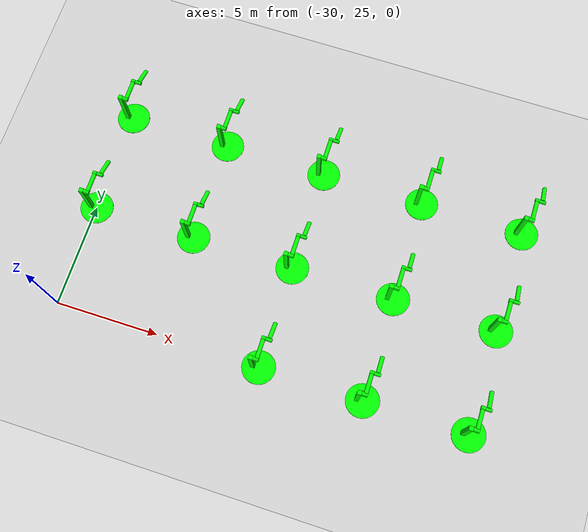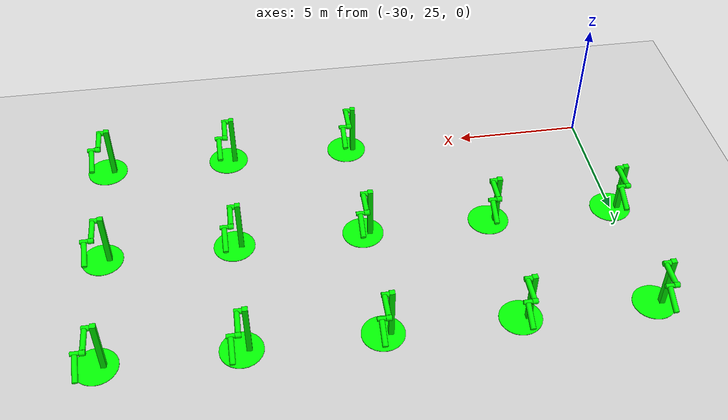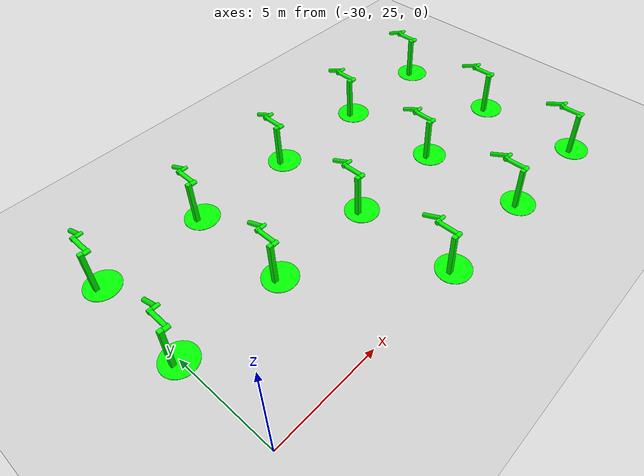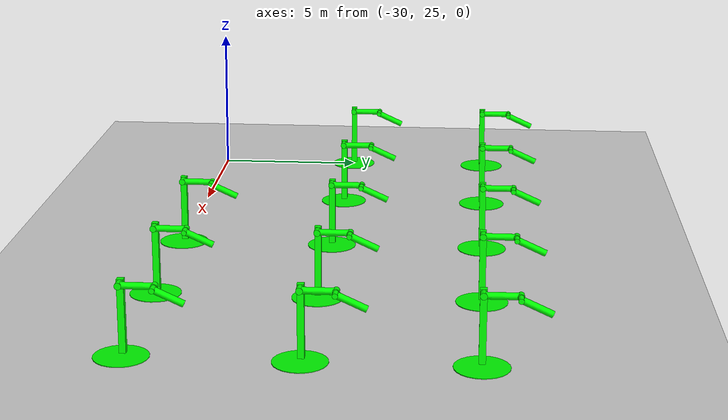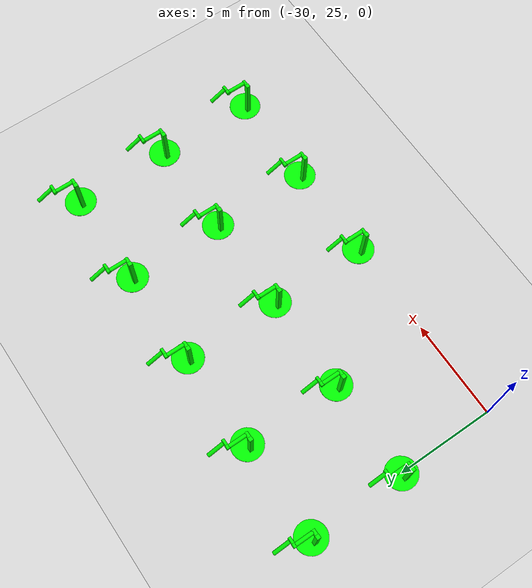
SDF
<sdf version="1.6">
 <world name="double_pendulums">
  <model name="ground_plane">
   <static>true</static>
   <link name="link">
    <collision name="collision">
     <geometry><plane><normal>0 0 1</normal><size>100 100</size></plane></geometry>
    </collision>
    <visual name="visual">
     <geometry><plane><normal>0 0 1</normal><size>100 100</size></plane></geometry>
     <material>
      <ambient>0.8 0.8 0.8 1</ambient>
      <diffuse>0.8 0.8 0.8 1</diffuse>
      <specular>0.8 0.8 0.8 1</specular>
     </material>
    </visual>
   </link>
  </model>
  <model name="dbl_pendulum_131">
   <pose>-20 25 0 0 0 0</pose>
   <link name="base">
    <inertial><mass>100</mass></inertial>
    <visual name="vis_plate_on_ground">
     <pose>0 0 0.01 0 0 0</pose>
     <geometry><cylinder><radius>0.8</radius><length>0.02</length></cylinder></geometry>
     <material><ambient>0 1 0 1</ambient><diffuse>0 1 0 1</diffuse><specular>0 1 0 1</specular></material>
    </visual>
    <visual name="vis_pole">
     <pose>-0.275 0 1.1 0 0 0</pose>
     <geometry><box><size>0.2 0.2 2.2</size></box></geometry>
     <material><ambient>0 1 0 1</ambient><diffuse>0 1 0 1</diffuse><specular>0 1 0 1</specular></material>
    </visual>
    <collision name="col_plate_on_ground">
     <pose>0 0 0.01 0 0 0</pose>
     <geometry><cylinder><radius>0.8</radius><length>0.02</length></cylinder></geometry>
    </collision>
    <collision name="col_pole">
     <pose>-0.275 0 1.1 0 0 0</pose>
     <geometry><box><size>0.2 0.2 2.2</size></box></geometry>
    </collision>
   </link>
   <link name="upper_link">
    <pose>0 0 2.1 -1.5708 0 0</pose>
    <inertial><pose>0 0 0.5 0 0 0</pose></inertial>
    <visual name="vis_upper_joint">
     <pose>-0.05 0 0 0 1.5708 0</pose>
     <geometry><cylinder><radius>0.1</radius><length>0.3</length></cylinder></geometry>
     <material><ambient>0 1 0 1</ambient><diffuse>0 1 0 1</diffuse><specular>0 1 0 1</specular></material>
    </visual>
    <visual name="vis_lower_joint">
     <pose>0 0 1.0 0 1.5708 0</pose>
     <geometry><cylinder><radius>0.1</radius><length>0.2</length></cylinder></geometry>
     <material><ambient>0 1 0 1</ambient><diffuse>0 1 0 1</diffuse><specular>0 1 0 1</specular></material>
    </visual>
    <visual name="vis_cylinder">
     <pose>0 0 0.5 0 0 0</pose>
     <geometry><cylinder><radius>0.1</radius><length>0.9</length></cylinder></geometry>
     <material><ambient>0 1 0 1</ambient><diffuse>0 1 0 1</diffuse><specular>0 1 0 1</specular></material>
    </visual>
    <collision name="col_upper_joint">
     <pose>-0.05 0 0 0 1.5708 0</pose>
     <geometry><cylinder><radius>0.1</radius><length>0.3</length></cylinder></geometry>
    </collision>
    <collision name="col_lower_joint">
     <pose>0 0 1.0 0 1.5708 0</pose>
     <geometry><cylinder><radius>0.1</radius><length>0.2</length></cylinder></geometry>
    </collision>
    <collision name="col_cylinder">
     <pose>0 0 0.5 0 0 0</pose>
     <geometry><cylinder><radius>0.1</radius><length>0.9</length></cylinder></geometry>
    </collision>
   </link>
   <link name="lower_link">
    <pose>0.25 1.0 2.1 -2 0 0</pose>
    <inertial><pose>0 0 0.5 0 0 0</pose></inertial>
    <visual name="vis_lower_joint">
     <pose>0 0 0 0 1.5708 0</pose>
     <geometry><cylinder><radius>0.08</radius><length>0.3</length></cylinder></geometry>
     <material><ambient>0 1 0 1</ambient><diffuse>0 1 0 1</diffuse><specular>0 1 0 1</specular></material>
    </visual>
    <visual name="vis_cylinder">
     <pose>0 0 0.5 0 0 0</pose>
     <geometry><cylinder><radius>0.1</radius><length>0.9</length></cylinder></geometry>
     <material><ambient>0 1 0 1</ambient><diffuse>0 1 0 1</diffuse><specular>0 1 0 1</specular></material>
    </visual>
    <collision name="col_lower_joint">
     <pose>0 0 0 0 1.5708 0</pose>
     <geometry><cylinder><radius>0.08</radius><length>0.3</length></cylinder></geometry>
    </collision>
    <collision name="col_cylinder">
     <pose>0 0 0.5 0 0 0</pose>
     <geometry><cylinder><radius>0.1</radius><length>0.9</length></cylinder></geometry>
    </collision>
   </link>
   <joint name="upper_joint" type="revolute">
    <parent>base</parent>
    <child>upper_link</child>
    <axis><xyz>1.0 0 0</xyz></axis>
   </joint>
   <joint name="lower_joint" type="revolute">
    <parent>upper_link</parent>
    <child>lower_link</child>
    <axis><xyz>1.0 0 0</xyz></axis>
   </joint>
  </model>
  <model name="dbl_pendulum_132">
   <pose>-15 25 0 0 0 0</pose>
   <link name="base">
    <inertial><mass>100</mass></inertial>
    <visual name="vis_plate_on_ground">
     <pose>0 0 0.01 0 0 0</pose>
     <geometry><cylinder><radius>0.8</radius><length>0.02</length></cylinder></geometry>
     <material><ambient>0 1 0 1</ambient><diffuse>0 1 0 1</diffuse><specular>0 1 0 1</specular></material>
    </visual>
    <visual name="vis_pole">
     <pose>-0.275 0 1.1 0 0 0</pose>
     <geometry><box><size>0.2 0.2 2.2</size></box></geometry>
     <material><ambient>0 1 0 1</ambient><diffuse>0 1 0 1</diffuse><specular>0 1 0 1</specular></material>
    </visual>
    <collision name="col_plate_on_ground">
     <pose>0 0 0.01 0 0 0</pose>
     <geometry><cylinder><radius>0.8</radius><length>0.02</length></cylinder></geometry>
    </collision>
    <collision name="col_pole">
     <pose>-0.275 0 1.1 0 0 0</pose>
     <geometry><box><size>0.2 0.2 2.2</size></box></geometry>
    </collision>
   </link>
   <link name="upper_link">
    <pose>0 0 2.1 -1.5708 0 0</pose>
    <inertial><pose>0 0 0.5 0 0 0</pose></inertial>
    <visual name="vis_upper_joint">
     <pose>-0.05 0 0 0 1.5708 0</pose>
     <geometry><cylinder><radius>0.1</radius><length>0.3</length></cylinder></geometry>
     <material><ambient>0 1 0 1</ambient><diffuse>0 1 0 1</diffuse><specular>0 1 0 1</specular></material>
    </visual>
    <visual name="vis_lower_joint">
     <pose>0 0 1.0 0 1.5708 0</pose>
     <geometry><cylinder><radius>0.1</radius><length>0.2</length></cylinder></geometry>
     <material><ambient>0 1 0 1</ambient><diffuse>0 1 0 1</diffuse><specular>0 1 0 1</specular></material>
    </visual>
    <visual name="vis_cylinder">
     <pose>0 0 0.5 0 0 0</pose>
     <geometry><cylinder><radius>0.1</radius><length>0.9</length></cylinder></geometry>
     <material><ambient>0 1 0 1</ambient><diffuse>0 1 0 1</diffuse><specular>0 1 0 1</specular></material>
    </visual>
    <collision name="col_upper_joint">
     <pose>-0.05 0 0 0 1.5708 0</pose>
     <geometry><cylinder><radius>0.1</radius><length>0.3</length></cylinder></geometry>
    </collision>
    <collision name="col_lower_joint">
     <pose>0 0 1.0 0 1.5708 0</pose>
     <geometry><cylinder><radius>0.1</radius><length>0.2</length></cylinder></geometry>
    </collision>
    <collision name="col_cylinder">
     <pose>0 0 0.5 0 0 0</pose>
     <geometry><cylinder><radius>0.1</radius><length>0.9</length></cylinder></geometry>
    </collision>
   </link>
   <link name="lower_link">
    <pose>0.25 1.0 2.1 -2 0 0</pose>
    <inertial><pose>0 0 0.5 0 0 0</pose></inertial>
    <visual name="vis_lower_joint">
     <pose>0 0 0 0 1.5708 0</pose>
     <geometry><cylinder><radius>0.08</radius><length>0.3</length></cylinder></geometry>
     <material><ambient>0 1 0 1</ambient><diffuse>0 1 0 1</diffuse><specular>0 1 0 1</specular></material>
    </visual>
    <visual name="vis_cylinder">
     <pose>0 0 0.5 0 0 0</pose>
     <geometry><cylinder><radius>0.1</radius><length>0.9</length></cylinder></geometry>
     <material><ambient>0 1 0 1</ambient><diffuse>0 1 0 1</diffuse><specular>0 1 0 1</specular></material>
    </visual>
    <collision name="col_lower_joint">
     <pose>0 0 0 0 1.5708 0</pose>
     <geometry><cylinder><radius>0.08</radius><length>0.3</length></cylinder></geometry>
    </collision>
    <collision name="col_cylinder">
     <pose>0 0 0.5 0 0 0</pose>
     <geometry><cylinder><radius>0.1</radius><length>0.9</length></cylinder></geometry>
    </collision>
   </link>
   <joint name="upper_joint" type="revolute">
    <parent>base</parent>
    <child>upper_link</child>
    <axis><xyz>1.0 0 0</xyz></axis>
   </joint>
   <joint name="lower_joint" type="revolute">
    <parent>upper_link</parent>
    <child>lower_link</child>
    <axis><xyz>1.0 0 0</xyz></axis>
   </joint>
  </model>
  <model name="dbl_pendulum_133">
   <pose>-10 25 0 0 0 0</pose>
   <link name="base">
    <inertial><mass>100</mass></inertial>
    <visual name="vis_plate_on_ground">
     <pose>0 0 0.01 0 0 0</pose>
     <geometry><cylinder><radius>0.8</radius><length>0.02</length></cylinder></geometry>
     <material><ambient>0 1 0 1</ambient><diffuse>0 1 0 1</diffuse><specular>0 1 0 1</specular></material>
    </visual>
    <visual name="vis_pole">
     <pose>-0.275 0 1.1 0 0 0</pose>
     <geometry><box><size>0.2 0.2 2.2</size></box></geometry>
     <material><ambient>0 1 0 1</ambient><diffuse>0 1 0 1</diffuse><specular>0 1 0 1</specular></material>
    </visual>
    <collision name="col_plate_on_ground">
     <pose>0 0 0.01 0 0 0</pose>
     <geometry><cylinder><radius>0.8</radius><length>0.02</length></cylinder></geometry>
    </collision>
    <collision name="col_pole">
     <pose>-0.275 0 1.1 0 0 0</pose>
     <geometry><box><size>0.2 0.2 2.2</size></box></geometry>
    </collision>
   </link>
   <link name="upper_link">
    <pose>0 0 2.1 -1.5708 0 0</pose>
    <inertial><pose>0 0 0.5 0 0 0</pose></inertial>
    <visual name="vis_upper_joint">
     <pose>-0.05 0 0 0 1.5708 0</pose>
     <geometry><cylinder><radius>0.1</radius><length>0.3</length></cylinder></geometry>
     <material><ambient>0 1 0 1</ambient><diffuse>0 1 0 1</diffuse><specular>0 1 0 1</specular></material>
    </visual>
    <visual name="vis_lower_joint">
     <pose>0 0 1.0 0 1.5708 0</pose>
     <geometry><cylinder><radius>0.1</radius><length>0.2</length></cylinder></geometry>
     <material><ambient>0 1 0 1</ambient><diffuse>0 1 0 1</diffuse><specular>0 1 0 1</specular></material>
    </visual>
    <visual name="vis_cylinder">
     <pose>0 0 0.5 0 0 0</pose>
     <geometry><cylinder><radius>0.1</radius><length>0.9</length></cylinder></geometry>
     <material><ambient>0 1 0 1</ambient><diffuse>0 1 0 1</diffuse><specular>0 1 0 1</specular></material>
    </visual>
    <collision name="col_upper_joint">
     <pose>-0.05 0 0 0 1.5708 0</pose>
     <geometry><cylinder><radius>0.1</radius><length>0.3</length></cylinder></geometry>
    </collision>
    <collision name="col_lower_joint">
     <pose>0 0 1.0 0 1.5708 0</pose>
     <geometry><cylinder><radius>0.1</radius><length>0.2</length></cylinder></geometry>
    </collision>
    <collision name="col_cylinder">
     <pose>0 0 0.5 0 0 0</pose>
     <geometry><cylinder><radius>0.1</radius><length>0.9</length></cylinder></geometry>
    </collision>
   </link>
   <link name="lower_link">
    <pose>0.25 1.0 2.1 -2 0 0</pose>
    <inertial><pose>0 0 0.5 0 0 0</pose></inertial>
    <visual name="vis_lower_joint">
     <pose>0 0 0 0 1.5708 0</pose>
     <geometry><cylinder><radius>0.08</radius><length>0.3</length></cylinder></geometry>
     <material><ambient>0 1 0 1</ambient><diffuse>0 1 0 1</diffuse><specular>0 1 0 1</specular></material>
    </visual>
    <visual name="vis_cylinder">
     <pose>0 0 0.5 0 0 0</pose>
     <geometry><cylinder><radius>0.1</radius><length>0.9</length></cylinder></geometry>
     <material><ambient>0 1 0 1</ambient><diffuse>0 1 0 1</diffuse><specular>0 1 0 1</specular></material>
    </visual>
    <collision name="col_lower_joint">
     <pose>0 0 0 0 1.5708 0</pose>
     <geometry><cylinder><radius>0.08</radius><length>0.3</length></cylinder></geometry>
    </collision>
    <collision name="col_cylinder">
     <pose>0 0 0.5 0 0 0</pose>
     <geometry><cylinder><radius>0.1</radius><length>0.9</length></cylinder></geometry>
    </collision>
   </link>
   <joint name="upper_joint" type="revolute">
    <parent>base</parent>
    <child>upper_link</child>
    <axis><xyz>1.0 0 0</xyz></axis>
   </joint>
   <joint name="lower_joint" type="revolute">
    <parent>upper_link</parent>
    <child>lower_link</child>
    <axis><xyz>1.0 0 0</xyz></axis>
   </joint>
  </model>
  <model name="dbl_pendulum_154">
   <pose>-30 30 0 0 0 0</pose>
   <link name="base">
    <inertial><mass>100</mass></inertial>
    <visual name="vis_plate_on_ground">
     <pose>0 0 0.01 0 0 0</pose>
     <geometry><cylinder><radius>0.8</radius><length>0.02</length></cylinder></geometry>
     <material><ambient>0 1 0 1</ambient><diffuse>0 1 0 1</diffuse><specular>0 1 0 1</specular></material>
    </visual>
    <visual name="vis_pole">
     <pose>-0.275 0 1.1 0 0 0</pose>
     <geometry><box><size>0.2 0.2 2.2</size></box></geometry>
     <material><ambient>0 1 0 1</ambient><diffuse>0 1 0 1</diffuse><specular>0 1 0 1</specular></material>
    </visual>
    <collision name="col_plate_on_ground">
     <pose>0 0 0.01 0 0 0</pose>
     <geometry><cylinder><radius>0.8</radius><length>0.02</length></cylinder></geometry>
    </collision>
    <collision name="col_pole">
     <pose>-0.275 0 1.1 0 0 0</pose>
     <geometry><box><size>0.2 0.2 2.2</size></box></geometry>
    </collision>
   </link>
   <link name="upper_link">
    <pose>0 0 2.1 -1.5708 0 0</pose>
    <inertial><pose>0 0 0.5 0 0 0</pose></inertial>
    <visual name="vis_upper_joint">
     <pose>-0.05 0 0 0 1.5708 0</pose>
     <geometry><cylinder><radius>0.1</radius><length>0.3</length></cylinder></geometry>
     <material><ambient>0 1 0 1</ambient><diffuse>0 1 0 1</diffuse><specular>0 1 0 1</specular></material>
    </visual>
    <visual name="vis_lower_joint">
     <pose>0 0 1.0 0 1.5708 0</pose>
     <geometry><cylinder><radius>0.1</radius><length>0.2</length></cylinder></geometry>
     <material><ambient>0 1 0 1</ambient><diffuse>0 1 0 1</diffuse><specular>0 1 0 1</specular></material>
    </visual>
    <visual name="vis_cylinder">
     <pose>0 0 0.5 0 0 0</pose>
     <geometry><cylinder><radius>0.1</radius><length>0.9</length></cylinder></geometry>
     <material><ambient>0 1 0 1</ambient><diffuse>0 1 0 1</diffuse><specular>0 1 0 1</specular></material>
    </visual>
    <collision name="col_upper_joint">
     <pose>-0.05 0 0 0 1.5708 0</pose>
     <geometry><cylinder><radius>0.1</radius><length>0.3</length></cylinder></geometry>
    </collision>
    <collision name="col_lower_joint">
     <pose>0 0 1.0 0 1.5708 0</pose>
     <geometry><cylinder><radius>0.1</radius><length>0.2</length></cylinder></geometry>
    </collision>
    <collision name="col_cylinder">
     <pose>0 0 0.5 0 0 0</pose>
     <geometry><cylinder><radius>0.1</radius><length>0.9</length></cylinder></geometry>
    </collision>
   </link>
   <link name="lower_link">
    <pose>0.25 1.0 2.1 -2 0 0</pose>
    <inertial><pose>0 0 0.5 0 0 0</pose></inertial>
    <visual name="vis_lower_joint">
     <pose>0 0 0 0 1.5708 0</pose>
     <geometry><cylinder><radius>0.08</radius><length>0.3</length></cylinder></geometry>
     <material><ambient>0 1 0 1</ambient><diffuse>0 1 0 1</diffuse><specular>0 1 0 1</specular></material>
    </visual>
    <visual name="vis_cylinder">
     <pose>0 0 0.5 0 0 0</pose>
     <geometry><cylinder><radius>0.1</radius><length>0.9</length></cylinder></geometry>
     <material><ambient>0 1 0 1</ambient><diffuse>0 1 0 1</diffuse><specular>0 1 0 1</specular></material>
    </visual>
    <collision name="col_lower_joint">
     <pose>0 0 0 0 1.5708 0</pose>
     <geometry><cylinder><radius>0.08</radius><length>0.3</length></cylinder></geometry>
    </collision>
    <collision name="col_cylinder">
     <pose>0 0 0.5 0 0 0</pose>
     <geometry><cylinder><radius>0.1</radius><length>0.9</length></cylinder></geometry>
    </collision>
   </link>
   <joint name="upper_joint" type="revolute">
    <parent>base</parent>
    <child>upper_link</child>
    <axis><xyz>1.0 0 0</xyz></axis>
   </joint>
   <joint name="lower_joint" type="revolute">
    <parent>upper_link</parent>
    <child>lower_link</child>
    <axis><xyz>1.0 0 0</xyz></axis>
   </joint>
  </model>
  <model name="dbl_pendulum_155">
   <pose>-25 30 0 0 0 0</pose>
   <link name="base">
    <inertial><mass>100</mass></inertial>
    <visual name="vis_plate_on_ground">
     <pose>0 0 0.01 0 0 0</pose>
     <geometry><cylinder><radius>0.8</radius><length>0.02</length></cylinder></geometry>
     <material><ambient>0 1 0 1</ambient><diffuse>0 1 0 1</diffuse><specular>0 1 0 1</specular></material>
    </visual>
    <visual name="vis_pole">
     <pose>-0.275 0 1.1 0 0 0</pose>
     <geometry><box><size>0.2 0.2 2.2</size></box></geometry>
     <material><ambient>0 1 0 1</ambient><diffuse>0 1 0 1</diffuse><specular>0 1 0 1</specular></material>
    </visual>
    <collision name="col_plate_on_ground">
     <pose>0 0 0.01 0 0 0</pose>
     <geometry><cylinder><radius>0.8</radius><length>0.02</length></cylinder></geometry>
    </collision>
    <collision name="col_pole">
     <pose>-0.275 0 1.1 0 0 0</pose>
     <geometry><box><size>0.2 0.2 2.2</size></box></geometry>
    </collision>
   </link>
   <link name="upper_link">
    <pose>0 0 2.1 -1.5708 0 0</pose>
    <inertial><pose>0 0 0.5 0 0 0</pose></inertial>
    <visual name="vis_upper_joint">
     <pose>-0.05 0 0 0 1.5708 0</pose>
     <geometry><cylinder><radius>0.1</radius><length>0.3</length></cylinder></geometry>
     <material><ambient>0 1 0 1</ambient><diffuse>0 1 0 1</diffuse><specular>0 1 0 1</specular></material>
    </visual>
    <visual name="vis_lower_joint">
     <pose>0 0 1.0 0 1.5708 0</pose>
     <geometry><cylinder><radius>0.1</radius><length>0.2</length></cylinder></geometry>
     <material><ambient>0 1 0 1</ambient><diffuse>0 1 0 1</diffuse><specular>0 1 0 1</specular></material>
    </visual>
    <visual name="vis_cylinder">
     <pose>0 0 0.5 0 0 0</pose>
     <geometry><cylinder><radius>0.1</radius><length>0.9</length></cylinder></geometry>
     <material><ambient>0 1 0 1</ambient><diffuse>0 1 0 1</diffuse><specular>0 1 0 1</specular></material>
    </visual>
    <collision name="col_upper_joint">
     <pose>-0.05 0 0 0 1.5708 0</pose>
     <geometry><cylinder><radius>0.1</radius><length>0.3</length></cylinder></geometry>
    </collision>
    <collision name="col_lower_joint">
     <pose>0 0 1.0 0 1.5708 0</pose>
     <geometry><cylinder><radius>0.1</radius><length>0.2</length></cylinder></geometry>
    </collision>
    <collision name="col_cylinder">
     <pose>0 0 0.5 0 0 0</pose>
     <geometry><cylinder><radius>0.1</radius><length>0.9</length></cylinder></geometry>
    </collision>
   </link>
   <link name="lower_link">
    <pose>0.25 1.0 2.1 -2 0 0</pose>
    <inertial><pose>0 0 0.5 0 0 0</pose></inertial>
    <visual name="vis_lower_joint">
     <pose>0 0 0 0 1.5708 0</pose>
     <geometry><cylinder><radius>0.08</radius><length>0.3</length></cylinder></geometry>
     <material><ambient>0 1 0 1</ambient><diffuse>0 1 0 1</diffuse><specular>0 1 0 1</specular></material>
    </visual>
    <visual name="vis_cylinder">
     <pose>0 0 0.5 0 0 0</pose>
     <geometry><cylinder><radius>0.1</radius><length>0.9</length></cylinder></geometry>
     <material><ambient>0 1 0 1</ambient><diffuse>0 1 0 1</diffuse><specular>0 1 0 1</specular></material>
    </visual>
    <collision name="col_lower_joint">
     <pose>0 0 0 0 1.5708 0</pose>
     <geometry><cylinder><radius>0.08</radius><length>0.3</length></cylinder></geometry>
    </collision>
    <collision name="col_cylinder">
     <pose>0 0 0.5 0 0 0</pose>
     <geometry><cylinder><radius>0.1</radius><length>0.9</length></cylinder></geometry>
    </collision>
   </link>
   <joint name="upper_joint" type="revolute">
    <parent>base</parent>
    <child>upper_link</child>
    <axis><xyz>1.0 0 0</xyz></axis>
   </joint>
   <joint name="lower_joint" type="revolute">
    <parent>upper_link</parent>
    <child>lower_link</child>
    <axis><xyz>1.0 0 0</xyz></axis>
   </joint>
  </model>
  <model name="dbl_pendulum_156">
   <pose>-20 30 0 0 0 0</pose>
   <link name="base">
    <inertial><mass>100</mass></inertial>
    <visual name="vis_plate_on_ground">
     <pose>0 0 0.01 0 0 0</pose>
     <geometry><cylinder><radius>0.8</radius><length>0.02</length></cylinder></geometry>
     <material><ambient>0 1 0 1</ambient><diffuse>0 1 0 1</diffuse><specular>0 1 0 1</specular></material>
    </visual>
    <visual name="vis_pole">
     <pose>-0.275 0 1.1 0 0 0</pose>
     <geometry><box><size>0.2 0.2 2.2</size></box></geometry>
     <material><ambient>0 1 0 1</ambient><diffuse>0 1 0 1</diffuse><specular>0 1 0 1</specular></material>
    </visual>
    <collision name="col_plate_on_ground">
     <pose>0 0 0.01 0 0 0</pose>
     <geometry><cylinder><radius>0.8</radius><length>0.02</length></cylinder></geometry>
    </collision>
    <collision name="col_pole">
     <pose>-0.275 0 1.1 0 0 0</pose>
     <geometry><box><size>0.2 0.2 2.2</size></box></geometry>
    </collision>
   </link>
   <link name="upper_link">
    <pose>0 0 2.1 -1.5708 0 0</pose>
    <inertial><pose>0 0 0.5 0 0 0</pose></inertial>
    <visual name="vis_upper_joint">
     <pose>-0.05 0 0 0 1.5708 0</pose>
     <geometry><cylinder><radius>0.1</radius><length>0.3</length></cylinder></geometry>
     <material><ambient>0 1 0 1</ambient><diffuse>0 1 0 1</diffuse><specular>0 1 0 1</specular></material>
    </visual>
    <visual name="vis_lower_joint">
     <pose>0 0 1.0 0 1.5708 0</pose>
     <geometry><cylinder><radius>0.1</radius><length>0.2</length></cylinder></geometry>
     <material><ambient>0 1 0 1</ambient><diffuse>0 1 0 1</diffuse><specular>0 1 0 1</specular></material>
    </visual>
    <visual name="vis_cylinder">
     <pose>0 0 0.5 0 0 0</pose>
     <geometry><cylinder><radius>0.1</radius><length>0.9</length></cylinder></geometry>
     <material><ambient>0 1 0 1</ambient><diffuse>0 1 0 1</diffuse><specular>0 1 0 1</specular></material>
    </visual>
    <collision name="col_upper_joint">
     <pose>-0.05 0 0 0 1.5708 0</pose>
     <geometry><cylinder><radius>0.1</radius><length>0.3</length></cylinder></geometry>
    </collision>
    <collision name="col_lower_joint">
     <pose>0 0 1.0 0 1.5708 0</pose>
     <geometry><cylinder><radius>0.1</radius><length>0.2</length></cylinder></geometry>
    </collision>
    <collision name="col_cylinder">
     <pose>0 0 0.5 0 0 0</pose>
     <geometry><cylinder><radius>0.1</radius><length>0.9</length></cylinder></geometry>
    </collision>
   </link>
   <link name="lower_link">
    <pose>0.25 1.0 2.1 -2 0 0</pose>
    <inertial><pose>0 0 0.5 0 0 0</pose></inertial>
    <visual name="vis_lower_joint">
     <pose>0 0 0 0 1.5708 0</pose>
     <geometry><cylinder><radius>0.08</radius><length>0.3</length></cylinder></geometry>
     <material><ambient>0 1 0 1</ambient><diffuse>0 1 0 1</diffuse><specular>0 1 0 1</specular></material>
    </visual>
    <visual name="vis_cylinder">
     <pose>0 0 0.5 0 0 0</pose>
     <geometry><cylinder><radius>0.1</radius><length>0.9</length></cylinder></geometry>
     <material><ambient>0 1 0 1</ambient><diffuse>0 1 0 1</diffuse><specular>0 1 0 1</specular></material>
    </visual>
    <collision name="col_lower_joint">
     <pose>0 0 0 0 1.5708 0</pose>
     <geometry><cylinder><radius>0.08</radius><length>0.3</length></cylinder></geometry>
    </collision>
    <collision name="col_cylinder">
     <pose>0 0 0.5 0 0 0</pose>
     <geometry><cylinder><radius>0.1</radius><length>0.9</length></cylinder></geometry>
    </collision>
   </link>
   <joint name="upper_joint" type="revolute">
    <parent>base</parent>
    <child>upper_link</child>
    <axis><xyz>1.0 0 0</xyz></axis>
   </joint>
   <joint name="lower_joint" type="revolute">
    <parent>upper_link</parent>
    <child>lower_link</child>
    <axis><xyz>1.0 0 0</xyz></axis>
   </joint>
  </model>
  <model name="dbl_pendulum_157">
   <pose>-15 30 0 0 0 0</pose>
   <link name="base">
    <inertial><mass>100</mass></inertial>
    <visual name="vis_plate_on_ground">
     <pose>0 0 0.01 0 0 0</pose>
     <geometry><cylinder><radius>0.8</radius><length>0.02</length></cylinder></geometry>
     <material><ambient>0 1 0 1</ambient><diffuse>0 1 0 1</diffuse><specular>0 1 0 1</specular></material>
    </visual>
    <visual name="vis_pole">
     <pose>-0.275 0 1.1 0 0 0</pose>
     <geometry><box><size>0.2 0.2 2.2</size></box></geometry>
     <material><ambient>0 1 0 1</ambient><diffuse>0 1 0 1</diffuse><specular>0 1 0 1</specular></material>
    </visual>
    <collision name="col_plate_on_ground">
     <pose>0 0 0.01 0 0 0</pose>
     <geometry><cylinder><radius>0.8</radius><length>0.02</length></cylinder></geometry>
    </collision>
    <collision name="col_pole">
     <pose>-0.275 0 1.1 0 0 0</pose>
     <geometry><box><size>0.2 0.2 2.2</size></box></geometry>
    </collision>
   </link>
   <link name="upper_link">
    <pose>0 0 2.1 -1.5708 0 0</pose>
    <inertial><pose>0 0 0.5 0 0 0</pose></inertial>
    <visual name="vis_upper_joint">
     <pose>-0.05 0 0 0 1.5708 0</pose>
     <geometry><cylinder><radius>0.1</radius><length>0.3</length></cylinder></geometry>
     <material><ambient>0 1 0 1</ambient><diffuse>0 1 0 1</diffuse><specular>0 1 0 1</specular></material>
    </visual>
    <visual name="vis_lower_joint">
     <pose>0 0 1.0 0 1.5708 0</pose>
     <geometry><cylinder><radius>0.1</radius><length>0.2</length></cylinder></geometry>
     <material><ambient>0 1 0 1</ambient><diffuse>0 1 0 1</diffuse><specular>0 1 0 1</specular></material>
    </visual>
    <visual name="vis_cylinder">
     <pose>0 0 0.5 0 0 0</pose>
     <geometry><cylinder><radius>0.1</radius><length>0.9</length></cylinder></geometry>
     <material><ambient>0 1 0 1</ambient><diffuse>0 1 0 1</diffuse><specular>0 1 0 1</specular></material>
    </visual>
    <collision name="col_upper_joint">
     <pose>-0.05 0 0 0 1.5708 0</pose>
     <geometry><cylinder><radius>0.1</radius><length>0.3</length></cylinder></geometry>
    </collision>
    <collision name="col_lower_joint">
     <pose>0 0 1.0 0 1.5708 0</pose>
     <geometry><cylinder><radius>0.1</radius><length>0.2</length></cylinder></geometry>
    </collision>
    <collision name="col_cylinder">
     <pose>0 0 0.5 0 0 0</pose>
     <geometry><cylinder><radius>0.1</radius><length>0.9</length></cylinder></geometry>
    </collision>
   </link>
   <link name="lower_link">
    <pose>0.25 1.0 2.1 -2 0 0</pose>
    <inertial><pose>0 0 0.5 0 0 0</pose></inertial>
    <visual name="vis_lower_joint">
     <pose>0 0 0 0 1.5708 0</pose>
     <geometry><cylinder><radius>0.08</radius><length>0.3</length></cylinder></geometry>
     <material><ambient>0 1 0 1</ambient><diffuse>0 1 0 1</diffuse><specular>0 1 0 1</specular></material>
    </visual>
    <visual name="vis_cylinder">
     <pose>0 0 0.5 0 0 0</pose>
     <geometry><cylinder><radius>0.1</radius><length>0.9</length></cylinder></geometry>
     <material><ambient>0 1 0 1</ambient><diffuse>0 1 0 1</diffuse><specular>0 1 0 1</specular></material>
    </visual>
    <collision name="col_lower_joint">
     <pose>0 0 0 0 1.5708 0</pose>
     <geometry><cylinder><radius>0.08</radius><length>0.3</length></cylinder></geometry>
    </collision>
    <collision name="col_cylinder">
     <pose>0 0 0.5 0 0 0</pose>
     <geometry><cylinder><radius>0.1</radius><length>0.9</length></cylinder></geometry>
    </collision>
   </link>
   <joint name="upper_joint" type="revolute">
    <parent>base</parent>
    <child>upper_link</child>
    <axis><xyz>1.0 0 0</xyz></axis>
   </joint>
   <joint name="lower_joint" type="revolute">
    <parent>upper_link</parent>
    <child>lower_link</child>
    <axis><xyz>1.0 0 0</xyz></axis>
   </joint>
  </model>
  <model name="dbl_pendulum_158">
   <pose>-10 30 0 0 0 0</pose>
   <link name="base">
    <inertial><mass>100</mass></inertial>
    <visual name="vis_plate_on_ground">
     <pose>0 0 0.01 0 0 0</pose>
     <geometry><cylinder><radius>0.8</radius><length>0.02</length></cylinder></geometry>
     <material><ambient>0 1 0 1</ambient><diffuse>0 1 0 1</diffuse><specular>0 1 0 1</specular></material>
    </visual>
    <visual name="vis_pole">
     <pose>-0.275 0 1.1 0 0 0</pose>
     <geometry><box><size>0.2 0.2 2.2</size></box></geometry>
     <material><ambient>0 1 0 1</ambient><diffuse>0 1 0 1</diffuse><specular>0 1 0 1</specular></material>
    </visual>
    <collision name="col_plate_on_ground">
     <pose>0 0 0.01 0 0 0</pose>
     <geometry><cylinder><radius>0.8</radius><length>0.02</length></cylinder></geometry>
    </collision>
    <collision name="col_pole">
     <pose>-0.275 0 1.1 0 0 0</pose>
     <geometry><box><size>0.2 0.2 2.2</size></box></geometry>
    </collision>
   </link>
   <link name="upper_link">
    <pose>0 0 2.1 -1.5708 0 0</pose>
    <inertial><pose>0 0 0.5 0 0 0</pose></inertial>
    <visual name="vis_upper_joint">
     <pose>-0.05 0 0 0 1.5708 0</pose>
     <geometry><cylinder><radius>0.1</radius><length>0.3</length></cylinder></geometry>
     <material><ambient>0 1 0 1</ambient><diffuse>0 1 0 1</diffuse><specular>0 1 0 1</specular></material>
    </visual>
    <visual name="vis_lower_joint">
     <pose>0 0 1.0 0 1.5708 0</pose>
     <geometry><cylinder><radius>0.1</radius><length>0.2</length></cylinder></geometry>
     <material><ambient>0 1 0 1</ambient><diffuse>0 1 0 1</diffuse><specular>0 1 0 1</specular></material>
    </visual>
    <visual name="vis_cylinder">
     <pose>0 0 0.5 0 0 0</pose>
     <geometry><cylinder><radius>0.1</radius><length>0.9</length></cylinder></geometry>
     <material><ambient>0 1 0 1</ambient><diffuse>0 1 0 1</diffuse><specular>0 1 0 1</specular></material>
    </visual>
    <collision name="col_upper_joint">
     <pose>-0.05 0 0 0 1.5708 0</pose>
     <geometry><cylinder><radius>0.1</radius><length>0.3</length></cylinder></geometry>
    </collision>
    <collision name="col_lower_joint">
     <pose>0 0 1.0 0 1.5708 0</pose>
     <geometry><cylinder><radius>0.1</radius><length>0.2</length></cylinder></geometry>
    </collision>
    <collision name="col_cylinder">
     <pose>0 0 0.5 0 0 0</pose>
     <geometry><cylinder><radius>0.1</radius><length>0.9</length></cylinder></geometry>
    </collision>
   </link>
   <link name="lower_link">
    <pose>0.25 1.0 2.1 -2 0 0</pose>
    <inertial><pose>0 0 0.5 0 0 0</pose></inertial>
    <visual name="vis_lower_joint">
     <pose>0 0 0 0 1.5708 0</pose>
     <geometry><cylinder><radius>0.08</radius><length>0.3</length></cylinder></geometry>
     <material><ambient>0 1 0 1</ambient><diffuse>0 1 0 1</diffuse><specular>0 1 0 1</specular></material>
    </visual>
    <visual name="vis_cylinder">
     <pose>0 0 0.5 0 0 0</pose>
     <geometry><cylinder><radius>0.1</radius><length>0.9</length></cylinder></geometry>
     <material><ambient>0 1 0 1</ambient><diffuse>0 1 0 1</diffuse><specular>0 1 0 1</specular></material>
    </visual>
    <collision name="col_lower_joint">
     <pose>0 0 0 0 1.5708 0</pose>
     <geometry><cylinder><radius>0.08</radius><length>0.3</length></cylinder></geometry>
    </collision>
    <collision name="col_cylinder">
     <pose>0 0 0.5 0 0 0</pose>
     <geometry><cylinder><radius>0.1</radius><length>0.9</length></cylinder></geometry>
    </collision>
   </link>
   <joint name="upper_joint" type="revolute">
    <parent>base</parent>
    <child>upper_link</child>
    <axis><xyz>1.0 0 0</xyz></axis>
   </joint>
   <joint name="lower_joint" type="revolute">
    <parent>upper_link</parent>
    <child>lower_link</child>
    <axis><xyz>1.0 0 0</xyz></axis>
   </joint>
  </model>
  <model name="dbl_pendulum_179">
   <pose>-30 35 0 0 0 0</pose>
   <link name="base">
    <inertial><mass>100</mass></inertial>
    <visual name="vis_plate_on_ground">
     <pose>0 0 0.01 0 0 0</pose>
     <geometry><cylinder><radius>0.8</radius><length>0.02</length></cylinder></geometry>
     <material><ambient>0 1 0 1</ambient><diffuse>0 1 0 1</diffuse><specular>0 1 0 1</specular></material>
    </visual>
    <visual name="vis_pole">
     <pose>-0.275 0 1.1 0 0 0</pose>
     <geometry><box><size>0.2 0.2 2.2</size></box></geometry>
     <material><ambient>0 1 0 1</ambient><diffuse>0 1 0 1</diffuse><specular>0 1 0 1</specular></material>
    </visual>
    <collision name="col_plate_on_ground">
     <pose>0 0 0.01 0 0 0</pose>
     <geometry><cylinder><radius>0.8</radius><length>0.02</length></cylinder></geometry>
    </collision>
    <collision name="col_pole">
     <pose>-0.275 0 1.1 0 0 0</pose>
     <geometry><box><size>0.2 0.2 2.2</size></box></geometry>
    </collision>
   </link>
   <link name="upper_link">
    <pose>0 0 2.1 -1.5708 0 0</pose>
    <inertial><pose>0 0 0.5 0 0 0</pose></inertial>
    <visual name="vis_upper_joint">
     <pose>-0.05 0 0 0 1.5708 0</pose>
     <geometry><cylinder><radius>0.1</radius><length>0.3</length></cylinder></geometry>
     <material><ambient>0 1 0 1</ambient><diffuse>0 1 0 1</diffuse><specular>0 1 0 1</specular></material>
    </visual>
    <visual name="vis_lower_joint">
     <pose>0 0 1.0 0 1.5708 0</pose>
     <geometry><cylinder><radius>0.1</radius><length>0.2</length></cylinder></geometry>
     <material><ambient>0 1 0 1</ambient><diffuse>0 1 0 1</diffuse><specular>0 1 0 1</specular></material>
    </visual>
    <visual name="vis_cylinder">
     <pose>0 0 0.5 0 0 0</pose>
     <geometry><cylinder><radius>0.1</radius><length>0.9</length></cylinder></geometry>
     <material><ambient>0 1 0 1</ambient><diffuse>0 1 0 1</diffuse><specular>0 1 0 1</specular></material>
    </visual>
    <collision name="col_upper_joint">
     <pose>-0.05 0 0 0 1.5708 0</pose>
     <geometry><cylinder><radius>0.1</radius><length>0.3</length></cylinder></geometry>
    </collision>
    <collision name="col_lower_joint">
     <pose>0 0 1.0 0 1.5708 0</pose>
     <geometry><cylinder><radius>0.1</radius><length>0.2</length></cylinder></geometry>
    </collision>
    <collision name="col_cylinder">
     <pose>0 0 0.5 0 0 0</pose>
     <geometry><cylinder><radius>0.1</radius><length>0.9</length></cylinder></geometry>
    </collision>
   </link>
   <link name="lower_link">
    <pose>0.25 1.0 2.1 -2 0 0</pose>
    <inertial><pose>0 0 0.5 0 0 0</pose></inertial>
    <visual name="vis_lower_joint">
     <pose>0 0 0 0 1.5708 0</pose>
     <geometry><cylinder><radius>0.08</radius><length>0.3</length></cylinder></geometry>
     <material><ambient>0 1 0 1</ambient><diffuse>0 1 0 1</diffuse><specular>0 1 0 1</specular></material>
    </visual>
    <visual name="vis_cylinder">
     <pose>0 0 0.5 0 0 0</pose>
     <geometry><cylinder><radius>0.1</radius><length>0.9</length></cylinder></geometry>
     <material><ambient>0 1 0 1</ambient><diffuse>0 1 0 1</diffuse><specular>0 1 0 1</specular></material>
    </visual>
    <collision name="col_lower_joint">
     <pose>0 0 0 0 1.5708 0</pose>
     <geometry><cylinder><radius>0.08</radius><length>0.3</length></cylinder></geometry>
    </collision>
    <collision name="col_cylinder">
     <pose>0 0 0.5 0 0 0</pose>
     <geometry><cylinder><radius>0.1</radius><length>0.9</length></cylinder></geometry>
    </collision>
   </link>
   <joint name="upper_joint" type="revolute">
    <parent>base</parent>
    <child>upper_link</child>
    <axis><xyz>1.0 0 0</xyz></axis>
   </joint>
   <joint name="lower_joint" type="revolute">
    <parent>upper_link</parent>
    <child>lower_link</child>
    <axis><xyz>1.0 0 0</xyz></axis>
   </joint>
  </model>
  <model name="dbl_pendulum_180">
   <pose>-25 35 0 0 0 0</pose>
   <link name="base">
    <inertial><mass>100</mass></inertial>
    <visual name="vis_plate_on_ground">
     <pose>0 0 0.01 0 0 0</pose>
     <geometry><cylinder><radius>0.8</radius><length>0.02</length></cylinder></geometry>
     <material><ambient>0 1 0 1</ambient><diffuse>0 1 0 1</diffuse><specular>0 1 0 1</specular></material>
    </visual>
    <visual name="vis_pole">
     <pose>-0.275 0 1.1 0 0 0</pose>
     <geometry><box><size>0.2 0.2 2.2</size></box></geometry>
     <material><ambient>0 1 0 1</ambient><diffuse>0 1 0 1</diffuse><specular>0 1 0 1</specular></material>
    </visual>
    <collision name="col_plate_on_ground">
     <pose>0 0 0.01 0 0 0</pose>
     <geometry><cylinder><radius>0.8</radius><length>0.02</length></cylinder></geometry>
    </collision>
    <collision name="col_pole">
     <pose>-0.275 0 1.1 0 0 0</pose>
     <geometry><box><size>0.2 0.2 2.2</size></box></geometry>
    </collision>
   </link>
   <link name="upper_link">
    <pose>0 0 2.1 -1.5708 0 0</pose>
    <inertial><pose>0 0 0.5 0 0 0</pose></inertial>
    <visual name="vis_upper_joint">
     <pose>-0.05 0 0 0 1.5708 0</pose>
     <geometry><cylinder><radius>0.1</radius><length>0.3</length></cylinder></geometry>
     <material><ambient>0 1 0 1</ambient><diffuse>0 1 0 1</diffuse><specular>0 1 0 1</specular></material>
    </visual>
    <visual name="vis_lower_joint">
     <pose>0 0 1.0 0 1.5708 0</pose>
     <geometry><cylinder><radius>0.1</radius><length>0.2</length></cylinder></geometry>
     <material><ambient>0 1 0 1</ambient><diffuse>0 1 0 1</diffuse><specular>0 1 0 1</specular></material>
    </visual>
    <visual name="vis_cylinder">
     <pose>0 0 0.5 0 0 0</pose>
     <geometry><cylinder><radius>0.1</radius><length>0.9</length></cylinder></geometry>
     <material><ambient>0 1 0 1</ambient><diffuse>0 1 0 1</diffuse><specular>0 1 0 1</specular></material>
    </visual>
    <collision name="col_upper_joint">
     <pose>-0.05 0 0 0 1.5708 0</pose>
     <geometry><cylinder><radius>0.1</radius><length>0.3</length></cylinder></geometry>
    </collision>
    <collision name="col_lower_joint">
     <pose>0 0 1.0 0 1.5708 0</pose>
     <geometry><cylinder><radius>0.1</radius><length>0.2</length></cylinder></geometry>
    </collision>
    <collision name="col_cylinder">
     <pose>0 0 0.5 0 0 0</pose>
     <geometry><cylinder><radius>0.1</radius><length>0.9</length></cylinder></geometry>
    </collision>
   </link>
   <link name="lower_link">
    <pose>0.25 1.0 2.1 -2 0 0</pose>
    <inertial><pose>0 0 0.5 0 0 0</pose></inertial>
    <visual name="vis_lower_joint">
     <pose>0 0 0 0 1.5708 0</pose>
     <geometry><cylinder><radius>0.08</radius><length>0.3</length></cylinder></geometry>
     <material><ambient>0 1 0 1</ambient><diffuse>0 1 0 1</diffuse><specular>0 1 0 1</specular></material>
    </visual>
    <visual name="vis_cylinder">
     <pose>0 0 0.5 0 0 0</pose>
     <geometry><cylinder><radius>0.1</radius><length>0.9</length></cylinder></geometry>
     <material><ambient>0 1 0 1</ambient><diffuse>0 1 0 1</diffuse><specular>0 1 0 1</specular></material>
    </visual>
    <collision name="col_lower_joint">
     <pose>0 0 0 0 1.5708 0</pose>
     <geometry><cylinder><radius>0.08</radius><length>0.3</length></cylinder></geometry>
    </collision>
    <collision name="col_cylinder">
     <pose>0 0 0.5 0 0 0</pose>
     <geometry><cylinder><radius>0.1</radius><length>0.9</length></cylinder></geometry>
    </collision>
   </link>
   <joint name="upper_joint" type="revolute">
    <parent>base</parent>
    <child>upper_link</child>
    <axis><xyz>1.0 0 0</xyz></axis>
   </joint>
   <joint name="lower_joint" type="revolute">
    <parent>upper_link</parent>
    <child>lower_link</child>
    <axis><xyz>1.0 0 0</xyz></axis>
   </joint>
  </model>
  <model name="dbl_pendulum_181">
   <pose>-20 35 0 0 0 0</pose>
   <link name="base">
    <inertial><mass>100</mass></inertial>
    <visual name="vis_plate_on_ground">
     <pose>0 0 0.01 0 0 0</pose>
     <geometry><cylinder><radius>0.8</radius><length>0.02</length></cylinder></geometry>
     <material><ambient>0 1 0 1</ambient><diffuse>0 1 0 1</diffuse><specular>0 1 0 1</specular></material>
    </visual>
    <visual name="vis_pole">
     <pose>-0.275 0 1.1 0 0 0</pose>
     <geometry><box><size>0.2 0.2 2.2</size></box></geometry>
     <material><ambient>0 1 0 1</ambient><diffuse>0 1 0 1</diffuse><specular>0 1 0 1</specular></material>
    </visual>
    <collision name="col_plate_on_ground">
     <pose>0 0 0.01 0 0 0</pose>
     <geometry><cylinder><radius>0.8</radius><length>0.02</length></cylinder></geometry>
    </collision>
    <collision name="col_pole">
     <pose>-0.275 0 1.1 0 0 0</pose>
     <geometry><box><size>0.2 0.2 2.2</size></box></geometry>
    </collision>
   </link>
   <link name="upper_link">
    <pose>0 0 2.1 -1.5708 0 0</pose>
    <inertial><pose>0 0 0.5 0 0 0</pose></inertial>
    <visual name="vis_upper_joint">
     <pose>-0.05 0 0 0 1.5708 0</pose>
     <geometry><cylinder><radius>0.1</radius><length>0.3</length></cylinder></geometry>
     <material><ambient>0 1 0 1</ambient><diffuse>0 1 0 1</diffuse><specular>0 1 0 1</specular></material>
    </visual>
    <visual name="vis_lower_joint">
     <pose>0 0 1.0 0 1.5708 0</pose>
     <geometry><cylinder><radius>0.1</radius><length>0.2</length></cylinder></geometry>
     <material><ambient>0 1 0 1</ambient><diffuse>0 1 0 1</diffuse><specular>0 1 0 1</specular></material>
    </visual>
    <visual name="vis_cylinder">
     <pose>0 0 0.5 0 0 0</pose>
     <geometry><cylinder><radius>0.1</radius><length>0.9</length></cylinder></geometry>
     <material><ambient>0 1 0 1</ambient><diffuse>0 1 0 1</diffuse><specular>0 1 0 1</specular></material>
    </visual>
    <collision name="col_upper_joint">
     <pose>-0.05 0 0 0 1.5708 0</pose>
     <geometry><cylinder><radius>0.1</radius><length>0.3</length></cylinder></geometry>
    </collision>
    <collision name="col_lower_joint">
     <pose>0 0 1.0 0 1.5708 0</pose>
     <geometry><cylinder><radius>0.1</radius><length>0.2</length></cylinder></geometry>
    </collision>
    <collision name="col_cylinder">
     <pose>0 0 0.5 0 0 0</pose>
     <geometry><cylinder><radius>0.1</radius><length>0.9</length></cylinder></geometry>
    </collision>
   </link>
   <link name="lower_link">
    <pose>0.25 1.0 2.1 -2 0 0</pose>
    <inertial><pose>0 0 0.5 0 0 0</pose></inertial>
    <visual name="vis_lower_joint">
     <pose>0 0 0 0 1.5708 0</pose>
     <geometry><cylinder><radius>0.08</radius><length>0.3</length></cylinder></geometry>
     <material><ambient>0 1 0 1</ambient><diffuse>0 1 0 1</diffuse><specular>0 1 0 1</specular></material>
    </visual>
    <visual name="vis_cylinder">
     <pose>0 0 0.5 0 0 0</pose>
     <geometry><cylinder><radius>0.1</radius><length>0.9</length></cylinder></geometry>
     <material><ambient>0 1 0 1</ambient><diffuse>0 1 0 1</diffuse><specular>0 1 0 1</specular></material>
    </visual>
    <collision name="col_lower_joint">
     <pose>0 0 0 0 1.5708 0</pose>
     <geometry><cylinder><radius>0.08</radius><length>0.3</length></cylinder></geometry>
    </collision>
    <collision name="col_cylinder">
     <pose>0 0 0.5 0 0 0</pose>
     <geometry><cylinder><radius>0.1</radius><length>0.9</length></cylinder></geometry>
    </collision>
   </link>
   <joint name="upper_joint" type="revolute">
    <parent>base</parent>
    <child>upper_link</child>
    <axis><xyz>1.0 0 0</xyz></axis>
   </joint>
   <joint name="lower_joint" type="revolute">
    <parent>upper_link</parent>
    <child>lower_link</child>
    <axis><xyz>1.0 0 0</xyz></axis>
   </joint>
  </model>
  <model name="dbl_pendulum_182">
   <pose>-15 35 0 0 0 0</pose>
   <link name="base">
    <inertial><mass>100</mass></inertial>
    <visual name="vis_plate_on_ground">
     <pose>0 0 0.01 0 0 0</pose>
     <geometry><cylinder><radius>0.8</radius><length>0.02</length></cylinder></geometry>
     <material><ambient>0 1 0 1</ambient><diffuse>0 1 0 1</diffuse><specular>0 1 0 1</specular></material>
    </visual>
    <visual name="vis_pole">
     <pose>-0.275 0 1.1 0 0 0</pose>
     <geometry><box><size>0.2 0.2 2.2</size></box></geometry>
     <material><ambient>0 1 0 1</ambient><diffuse>0 1 0 1</diffuse><specular>0 1 0 1</specular></material>
    </visual>
    <collision name="col_plate_on_ground">
     <pose>0 0 0.01 0 0 0</pose>
     <geometry><cylinder><radius>0.8</radius><length>0.02</length></cylinder></geometry>
    </collision>
    <collision name="col_pole">
     <pose>-0.275 0 1.1 0 0 0</pose>
     <geometry><box><size>0.2 0.2 2.2</size></box></geometry>
    </collision>
   </link>
   <link name="upper_link">
    <pose>0 0 2.1 -1.5708 0 0</pose>
    <inertial><pose>0 0 0.5 0 0 0</pose></inertial>
    <visual name="vis_upper_joint">
     <pose>-0.05 0 0 0 1.5708 0</pose>
     <geometry><cylinder><radius>0.1</radius><length>0.3</length></cylinder></geometry>
     <material><ambient>0 1 0 1</ambient><diffuse>0 1 0 1</diffuse><specular>0 1 0 1</specular></material>
    </visual>
    <visual name="vis_lower_joint">
     <pose>0 0 1.0 0 1.5708 0</pose>
     <geometry><cylinder><radius>0.1</radius><length>0.2</length></cylinder></geometry>
     <material><ambient>0 1 0 1</ambient><diffuse>0 1 0 1</diffuse><specular>0 1 0 1</specular></material>
    </visual>
    <visual name="vis_cylinder">
     <pose>0 0 0.5 0 0 0</pose>
     <geometry><cylinder><radius>0.1</radius><length>0.9</length></cylinder></geometry>
     <material><ambient>0 1 0 1</ambient><diffuse>0 1 0 1</diffuse><specular>0 1 0 1</specular></material>
    </visual>
    <collision name="col_upper_joint">
     <pose>-0.05 0 0 0 1.5708 0</pose>
     <geometry><cylinder><radius>0.1</radius><length>0.3</length></cylinder></geometry>
    </collision>
    <collision name="col_lower_joint">
     <pose>0 0 1.0 0 1.5708 0</pose>
     <geometry><cylinder><radius>0.1</radius><length>0.2</length></cylinder></geometry>
    </collision>
    <collision name="col_cylinder">
     <pose>0 0 0.5 0 0 0</pose>
     <geometry><cylinder><radius>0.1</radius><length>0.9</length></cylinder></geometry>
    </collision>
   </link>
   <link name="lower_link">
    <pose>0.25 1.0 2.1 -2 0 0</pose>
    <inertial><pose>0 0 0.5 0 0 0</pose></inertial>
    <visual name="vis_lower_joint">
     <pose>0 0 0 0 1.5708 0</pose>
     <geometry><cylinder><radius>0.08</radius><length>0.3</length></cylinder></geometry>
     <material><ambient>0 1 0 1</ambient><diffuse>0 1 0 1</diffuse><specular>0 1 0 1</specular></material>
    </visual>
    <visual name="vis_cylinder">
     <pose>0 0 0.5 0 0 0</pose>
     <geometry><cylinder><radius>0.1</radius><length>0.9</length></cylinder></geometry>
     <material><ambient>0 1 0 1</ambient><diffuse>0 1 0 1</diffuse><specular>0 1 0 1</specular></material>
    </visual>
    <collision name="col_lower_joint">
     <pose>0 0 0 0 1.5708 0</pose>
     <geometry><cylinder><radius>0.08</radius><length>0.3</length></cylinder></geometry>
    </collision>
    <collision name="col_cylinder">
     <pose>0 0 0.5 0 0 0</pose>
     <geometry><cylinder><radius>0.1</radius><length>0.9</length></cylinder></geometry>
    </collision>
   </link>
   <joint name="upper_joint" type="revolute">
    <parent>base</parent>
    <child>upper_link</child>
    <axis><xyz>1.0 0 0</xyz></axis>
   </joint>
   <joint name="lower_joint" type="revolute">
    <parent>upper_link</parent>
    <child>lower_link</child>
    <axis><xyz>1.0 0 0</xyz></axis>
   </joint>
  </model>
  <model name="dbl_pendulum_183">
   <pose>-10 35 0 0 0 0</pose>
   <link name="base">
    <inertial><mass>100</mass></inertial>
    <visual name="vis_plate_on_ground">
     <pose>0 0 0.01 0 0 0</pose>
     <geometry><cylinder><radius>0.8</radius><length>0.02</length></cylinder></geometry>
     <material><ambient>0 1 0 1</ambient><diffuse>0 1 0 1</diffuse><specular>0 1 0 1</specular></material>
    </visual>
    <visual name="vis_pole">
     <pose>-0.275 0 1.1 0 0 0</pose>
     <geometry><box><size>0.2 0.2 2.2</size></box></geometry>
     <material><ambient>0 1 0 1</ambient><diffuse>0 1 0 1</diffuse><specular>0 1 0 1</specular></material>
    </visual>
    <collision name="col_plate_on_ground">
     <pose>0 0 0.01 0 0 0</pose>
     <geometry><cylinder><radius>0.8</radius><length>0.02</length></cylinder></geometry>
    </collision>
    <collision name="col_pole">
     <pose>-0.275 0 1.1 0 0 0</pose>
     <geometry><box><size>0.2 0.2 2.2</size></box></geometry>
    </collision>
   </link>
   <link name="upper_link">
    <pose>0 0 2.1 -1.5708 0 0</pose>
    <inertial><pose>0 0 0.5 0 0 0</pose></inertial>
    <visual name="vis_upper_joint">
     <pose>-0.05 0 0 0 1.5708 0</pose>
     <geometry><cylinder><radius>0.1</radius><length>0.3</length></cylinder></geometry>
     <material><ambient>0 1 0 1</ambient><diffuse>0 1 0 1</diffuse><specular>0 1 0 1</specular></material>
    </visual>
    <visual name="vis_lower_joint">
     <pose>0 0 1.0 0 1.5708 0</pose>
     <geometry><cylinder><radius>0.1</radius><length>0.2</length></cylinder></geometry>
     <material><ambient>0 1 0 1</ambient><diffuse>0 1 0 1</diffuse><specular>0 1 0 1</specular></material>
    </visual>
    <visual name="vis_cylinder">
     <pose>0 0 0.5 0 0 0</pose>
     <geometry><cylinder><radius>0.1</radius><length>0.9</length></cylinder></geometry>
     <material><ambient>0 1 0 1</ambient><diffuse>0 1 0 1</diffuse><specular>0 1 0 1</specular></material>
    </visual>
    <collision name="col_upper_joint">
     <pose>-0.05 0 0 0 1.5708 0</pose>
     <geometry><cylinder><radius>0.1</radius><length>0.3</length></cylinder></geometry>
    </collision>
    <collision name="col_lower_joint">
     <pose>0 0 1.0 0 1.5708 0</pose>
     <geometry><cylinder><radius>0.1</radius><length>0.2</length></cylinder></geometry>
    </collision>
    <collision name="col_cylinder">
     <pose>0 0 0.5 0 0 0</pose>
     <geometry><cylinder><radius>0.1</radius><length>0.9</length></cylinder></geometry>
    </collision>
   </link>
   <link name="lower_link">
    <pose>0.25 1.0 2.1 -2 0 0</pose>
    <inertial><pose>0 0 0.5 0 0 0</pose></inertial>
    <visual name="vis_lower_joint">
     <pose>0 0 0 0 1.5708 0</pose>
     <geometry><cylinder><radius>0.08</radius><length>0.3</length></cylinder></geometry>
     <material><ambient>0 1 0 1</ambient><diffuse>0 1 0 1</diffuse><specular>0 1 0 1</specular></material>
    </visual>
    <visual name="vis_cylinder">
     <pose>0 0 0.5 0 0 0</pose>
     <geometry><cylinder><radius>0.1</radius><length>0.9</length></cylinder></geometry>
     <material><ambient>0 1 0 1</ambient><diffuse>0 1 0 1</diffuse><specular>0 1 0 1</specular></material>
    </visual>
    <collision name="col_lower_joint">
     <pose>0 0 0 0 1.5708 0</pose>
     <geometry><cylinder><radius>0.08</radius><length>0.3</length></cylinder></geometry>
    </collision>
    <collision name="col_cylinder">
     <pose>0 0 0.5 0 0 0</pose>
     <geometry><cylinder><radius>0.1</radius><length>0.9</length></cylinder></geometry>
    </collision>
   </link>
   <joint name="upper_joint" type="revolute">
    <parent>base</parent>
    <child>upper_link</child>
    <axis><xyz>1.0 0 0</xyz></axis>
   </joint>
   <joint name="lower_joint" type="revolute">
    <parent>upper_link</parent>
    <child>lower_link</child>
    <axis><xyz>1.0 0 0</xyz></axis>
   </joint>
  </model>
 </world>
</sdf>
